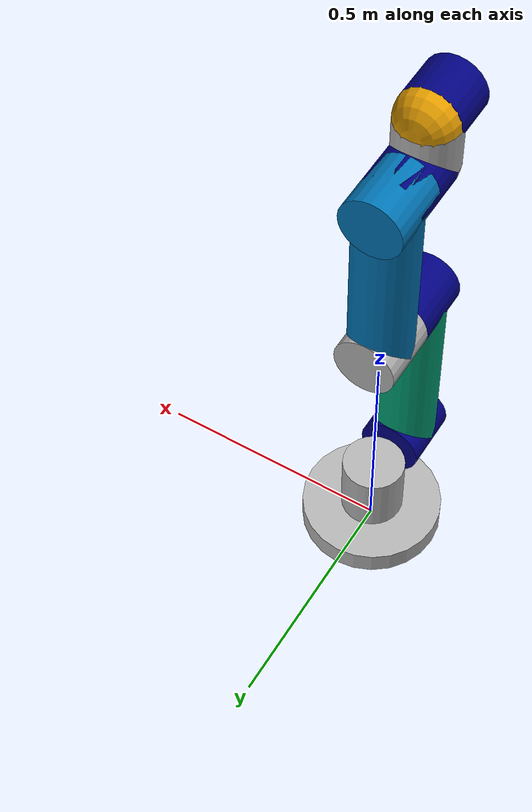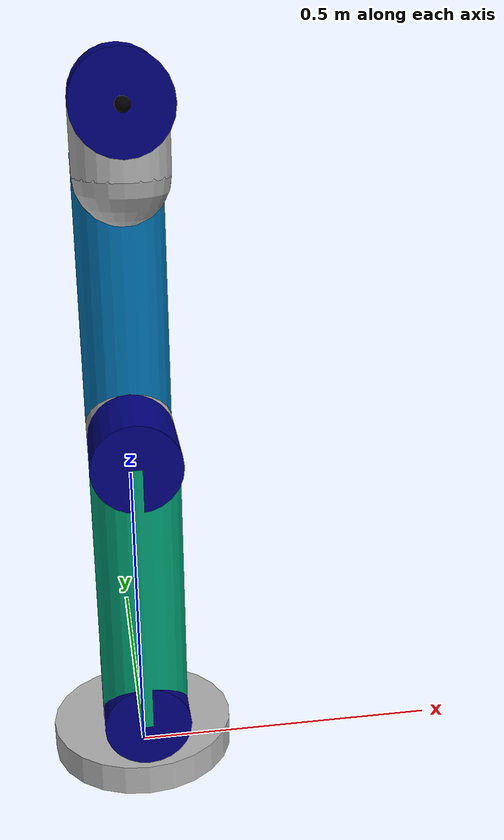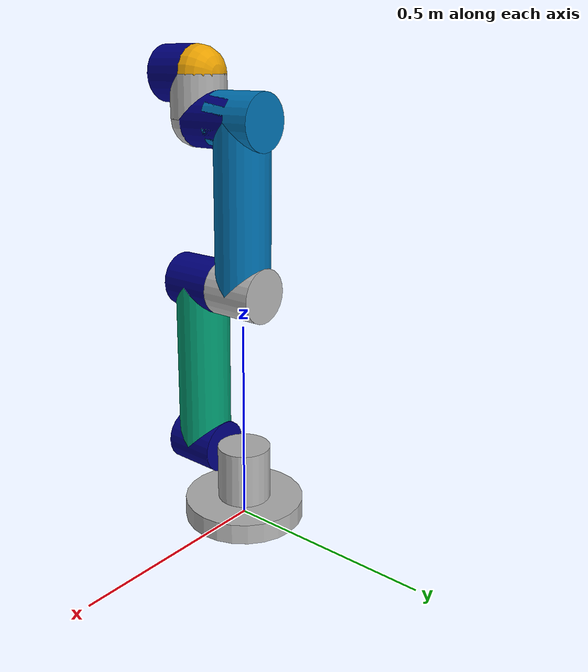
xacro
<?xml version="1.0"?>

<robot name="my_robot" xmlns:xacro="http://www.ros.org/wiki/xacro">

    <!--Gazebo Plugin-->
    <gazebo>
    <plugin filename="libgz_ros2_control-system.so" name="gz_ros2_control::GazeboSimROS2ControlPlugin">
        <parameters>$(find my_robot_desc)/config/controllers.yaml</parameters>
    </plugin>
    </gazebo>
    <!-- Include materials -->
    <xacro:include filename="materials.xacro"/>
    <xacro:include filename="inertias.xacro"/>

    <!-- constants -->
    <xacro:property name="d0" value="0.1625"/>
    <xacro:property name="a1" value="-0.425"/>
    <xacro:property name="a2" value="-0.3922"/>
    <xacro:property name="d3" value="0.1333"/>
    <xacro:property name="d4" value="0.0997"/>
    <xacro:property name="d5" value="0.0996"/>
    <xacro:property name="diameter" value="0.132"/>

    <!-- Positive geometry lengths -->
    <xacro:property name="a1_len" value="0.425"/>
    <xacro:property name="a2_len" value="0.3922"/>

    <!-- Robot Masses -->
    <xacro:property name="shoulder_mass" value="3.761"/>
    <xacro:property name="upper_arm_mass" value="8.058"/>
    <xacro:property name="forearm_mass" value="2.846"/>
    <xacro:property name="wrist_1_mass" value="1.37"/>
    <xacro:property name="wrist_2_mass" value="1.3"/>
    <xacro:property name="wrist_3_mass" value="0.365"/>

    <!-- Inertias -->
    <!-- Shoulder -->
    <xacro:property name="shoulder_com_x" value="0.0"/>
    <xacro:property name="shoulder_com_y" value="-0.00193"/>
    <xacro:property name="shoulder_com_z" value="-0.02561"/>
    <xacro:property name="shoulder_roll"  value="${pi/2}"/>
    <xacro:property name="shoulder_pitch" value="0"/>
    <xacro:property name="shoulder_yaw"   value="0"/>
    <xacro:property name="shoulder_ixx" value="0.00700210"/>
    <xacro:property name="shoulder_ixy" value="0.00000073"/>
    <xacro:property name="shoulder_ixz" value="-0.00001053"/>
    <xacro:property name="shoulder_iyy" value="0.00648091"/>
    <xacro:property name="shoulder_iyz" value="0.00049994"/>
    <xacro:property name="shoulder_izz" value="0.00657286"/>

    <!-- Upper arm -->
    <xacro:property name="upper_arm_com_x" value="-0.2125"/>
    <xacro:property name="upper_arm_com_y" value="0.0"/>
    <xacro:property name="upper_arm_com_z" value="0.11336"/>
    <xacro:property name="upper_arm_roll"  value="0"/>
    <xacro:property name="upper_arm_pitch" value="0"/>
    <xacro:property name="upper_arm_yaw"   value="0"/>
    <xacro:property name="upper_arm_ixx" value="0.01505885"/>
    <xacro:property name="upper_arm_ixy" value="-0.00005400"/>
    <xacro:property name="upper_arm_ixz" value="0.00000563"/>
    <xacro:property name="upper_arm_iyy" value="0.33388086"/>
    <xacro:property name="upper_arm_iyz" value="-0.00000181"/>
    <xacro:property name="upper_arm_izz" value="0.33247207"/>

    <!-- Forearm -->
    <xacro:property name="forearm_com_x" value="-0.2422"/>
    <xacro:property name="forearm_com_y" value="0.0"/>
    <xacro:property name="forearm_com_z" value="0.0265"/>
    <xacro:property name="forearm_roll"  value="0"/>
    <xacro:property name="forearm_pitch" value="0"/>
    <xacro:property name="forearm_yaw"   value="0"/>
    <xacro:property name="forearm_ixx" value="0.00399632"/>
    <xacro:property name="forearm_ixy" value="-0.00001365"/>
    <xacro:property name="forearm_ixz" value="0.00137272"/>
    <xacro:property name="forearm_iyy" value="0.07879254"/>
    <xacro:property name="forearm_iyz" value="-0.00000660"/>
    <xacro:property name="forearm_izz" value="0.07848510"/>

    <!-- Wrist 1 -->
    <xacro:property name="wrist_1_com_x" value="0.0"/>
    <xacro:property name="wrist_1_com_y" value="-0.01634"/>
    <xacro:property name="wrist_1_com_z" value="-0.0018"/>
    <xacro:property name="wrist_1_roll"  value="${pi/2}"/>
    <xacro:property name="wrist_1_pitch" value="0"/>
    <xacro:property name="wrist_1_yaw"   value="0"/>
    <xacro:property name="wrist_1_ixx" value="0.00165491"/>
    <xacro:property name="wrist_1_ixy" value="-0.00000282"/>
    <xacro:property name="wrist_1_ixz" value="-0.00000438"/>
    <xacro:property name="wrist_1_iyy" value="0.00135962"/>
    <xacro:property name="wrist_1_iyz" value="0.00010157"/>
    <xacro:property name="wrist_1_izz" value="0.00126279"/>

    <!-- Wrist 2 -->
    <xacro:property name="wrist_2_com_x" value="0.0"/>
    <xacro:property name="wrist_2_com_y" value="0.01634"/>
    <xacro:property name="wrist_2_com_z" value="-0.0018"/>
    <xacro:property name="wrist_2_roll"  value="${-pi/2}"/>
    <xacro:property name="wrist_2_pitch" value="0"/>
    <xacro:property name="wrist_2_yaw"   value="0"/>
    <xacro:property name="wrist_2_ixx" value="0.00135617"/>
    <xacro:property name="wrist_2_ixy" value="-0.00000274"/>
    <xacro:property name="wrist_2_ixz" value="0.00000444"/>
    <xacro:property name="wrist_2_iyy" value="0.00127827"/>
    <xacro:property name="wrist_2_iyz" value="-0.00005048"/>
    <xacro:property name="wrist_2_izz" value="0.00096614"/>

    <!-- Wrist 3 -->
    <xacro:property name="wrist_3_com_x" value="0.0"/>
    <xacro:property name="wrist_3_com_y" value="0.0"/>
    <xacro:property name="wrist_3_com_z" value="-0.001159"/>
    <xacro:property name="wrist_3_roll"  value="0"/>
    <xacro:property name="wrist_3_pitch" value="0"/>
    <xacro:property name="wrist_3_yaw"   value="0"/>
    <xacro:property name="wrist_3_ixx" value="0.00018694"/>
    <xacro:property name="wrist_3_ixy" value="0.00000006"/>
    <xacro:property name="wrist_3_ixz" value="-0.00000017"/>
    <xacro:property name="wrist_3_iyy" value="0.00018908"/>
    <xacro:property name="wrist_3_iyz" value="-0.00000092"/>
    <xacro:property name="wrist_3_izz" value="0.00025756"/>

    <!-- Links -->

    <link name="base_link">
        <visual>
            <origin xyz="0 0 0.025" rpy="0 0 0"/>
            <geometry>
                <cylinder radius="0.149" length="0.05"/>
            </geometry>
            <material name="gray"/>
        </visual>
        <collision>
            <origin xyz="0 0 0.025" rpy="0 0 0"/>
            <geometry>
                <cylinder radius="0.149" length="0.05"/>
            </geometry>
        </collision>
        <inertial>
            <origin xyz="0 0 0.025" rpy="0 0 0"/>
            <mass value="4.0"/>
            <inertia ixx="0.02303433" ixy="0.0" ixz="0.0"
                     iyy="0.02303433" iyz="0.0" izz="0.044402"/>
        </inertial>
    </link>

    <link name="link_0">
        <visual>
            <origin xyz="0 0 ${d0/2 + 0.025}" rpy="0 0 0"/>
            <geometry>
                <cylinder radius="${diameter/2}" length="${d0}"/>
            </geometry>
            <material name="gray"/>
        </visual>
        <collision>
            <origin xyz="0 0 ${d0/2 + 0.025}" rpy="0 0 0"/>
            <geometry>
                <cylinder radius="${diameter/2}" length="${d0}"/>
            </geometry>
        </collision>
        <xacro:robot_inertial
            mass="${shoulder_mass}"
            com_x="${shoulder_com_x}"
            com_y="${shoulder_com_y}"
            com_z="${shoulder_com_z}"
            roll="${shoulder_roll}"
            pitch="${shoulder_pitch}"
            yaw="${shoulder_yaw}"
            ixx="${shoulder_ixx}"
            ixy="${shoulder_ixy}"
            ixz="${shoulder_ixz}"
            iyy="${shoulder_iyy}"
            iyz="${shoulder_iyz}"
            izz="${shoulder_izz}"/>
    </link>

    <link name="link_1">
        <visual>
            <origin xyz="0 0 ${diameter}" rpy="0 0 0"/>
            <geometry>
                <cylinder radius="${diameter/2}" length="${diameter}"/>
            </geometry>
            <material name="blue"/>
        </visual>
        <visual>
            <origin xyz="0 ${-a1/2} 0.133" rpy="${pi/2} 0 0"/>
            <geometry>
                <cylinder radius="${diameter/2}" length="${a1_len}"/>
            </geometry>
        </visual>
        <visual>
            <origin xyz="0 ${-a1} ${diameter}" rpy="0 0 0"/>
            <geometry>
                <cylinder radius="${diameter/2}" length="${diameter}"/>
            </geometry>
            <material name="blue"/>
        </visual>

        <collision>
            <origin xyz="0 0 ${diameter}" rpy="0 0 0"/>
            <geometry>
                <cylinder radius="${diameter/2}" length="${diameter}"/>
            </geometry>
        </collision>
        <collision>
            <origin xyz="0 ${-a1/2} 0.133" rpy="${pi/2} 0 0"/>
            <geometry>
                <cylinder radius="${diameter/2}" length="${a1_len}"/>
            </geometry>
        </collision>
        <collision>
            <origin xyz="0 ${-a1} ${diameter}" rpy="0 0 0"/>
            <geometry>
                <cylinder radius="${diameter/2}" length="${diameter}"/>
            </geometry>
        </collision>

        <xacro:robot_inertial
            mass="${upper_arm_mass}"
            com_x="${upper_arm_com_x}"
            com_y="${upper_arm_com_y}"
            com_z="${upper_arm_com_z}"
            roll="${upper_arm_roll}"
            pitch="${upper_arm_pitch}"
            yaw="${upper_arm_yaw}"
            ixx="${upper_arm_ixx}"
            ixy="${upper_arm_ixy}"
            ixz="${upper_arm_ixz}"
            iyy="${upper_arm_iyy}"
            iyz="${upper_arm_iyz}"
            izz="${upper_arm_izz}"/>
    </link>

    <link name="link_1_j2_rot">
        <inertial>
            <origin xyz="0 0 0" rpy="0 0 0"/>
            <mass value="0.001"/>
            <inertia ixx="1e-6" ixy="0" ixz="0" iyy="1e-6" iyz="0" izz="1e-6"/>
        </inertial>
    </link>

    <link name="link_2">
        <visual>
            <origin xyz="0 0 0" rpy="0 0 0"/>
            <geometry>
                <cylinder radius="${diameter/2}" length="${diameter}"/>
            </geometry>
            <material name="gray"/>
        </visual>
        <visual>
            <origin xyz="${a2/2} 0 0" rpy="0 ${pi/2} 0"/>
            <geometry>
                <cylinder radius="${diameter/2}" length="${a2_len}"/>
            </geometry>
        </visual>
        <visual>
            <origin xyz="${a2} 0 0" rpy="0 0 0"/>
            <geometry>
                <cylinder radius="${diameter/2}" length="${diameter}"/>
            </geometry>
        </visual>

        <collision>
            <origin xyz="0 0 0" rpy="0 0 0"/>
            <geometry>
                <cylinder radius="${diameter/2}" length="${diameter}"/>
            </geometry>
        </collision>
        <collision>
            <origin xyz="${a2/2} 0 0" rpy="0 ${pi/2} 0"/>
            <geometry>
                <cylinder radius="${diameter/2}" length="${a2_len}"/>
            </geometry>
        </collision>
        <collision>
            <origin xyz="${a2} 0 0" rpy="0 0 0"/>
            <geometry>
                <cylinder radius="${diameter/2}" length="${diameter}"/>
            </geometry>
        </collision>

        <xacro:robot_inertial
            mass="${forearm_mass}"
            com_x="${forearm_com_x}"
            com_y="${forearm_com_y}"
            com_z="${forearm_com_z}"
            roll="${forearm_roll}"
            pitch="${forearm_pitch}"
            yaw="${forearm_yaw}"
            ixx="${forearm_ixx}"
            ixy="${forearm_ixy}"
            ixz="${forearm_ixz}"
            iyy="${forearm_iyy}"
            iyz="${forearm_iyz}"
            izz="${forearm_izz}"/>
    </link>

    <link name="link_3">
        <visual>
            <origin xyz="0 0 ${diameter/2}" rpy="0 0 0"/>
            <geometry>
                <cylinder radius="${diameter/2}" length="${diameter}"/>
            </geometry>
            <material name="blue"/>
        </visual>
        <collision>
            <origin xyz="0 0 ${diameter/2}" rpy="0 0 0"/>
            <geometry>
                <cylinder radius="${diameter/2}" length="${diameter}"/>
            </geometry>
        </collision>
        <xacro:robot_inertial
            mass="${wrist_1_mass}"
            com_x="${wrist_1_com_x}"
            com_y="${wrist_1_com_y}"
            com_z="${wrist_1_com_z}"
            roll="${wrist_1_roll}"
            pitch="${wrist_1_pitch}"
            yaw="${wrist_1_yaw}"
            ixx="${wrist_1_ixx}"
            ixy="${wrist_1_ixy}"
            ixz="${wrist_1_ixz}"
            iyy="${wrist_1_iyy}"
            iyz="${wrist_1_iyz}"
            izz="${wrist_1_izz}"/>
    </link>

    <link name="link_3_j4_rot">
        <inertial>
            <origin xyz="0 0 0" rpy="0 0 0"/>
            <mass value="0.001"/>
            <inertia ixx="1e-6" ixy="0" ixz="0" iyy="1e-6" iyz="0" izz="1e-6"/>
        </inertial>
    </link>

    <link name="link_4">
        <visual>
            <origin xyz="0 0 ${d4/2}" rpy="0 0 0"/>
            <geometry>
                <cylinder radius="${diameter/2}" length="${d4}"/>
            </geometry>
            <material name="gray"/>
        </visual>
        <visual>
            <origin xyz="0 0 0" rpy="0 0 0"/>
            <geometry>
                <sphere radius="${diameter/2}"/>
            </geometry>
        </visual>

        <collision>
            <origin xyz="0 0 ${d4/2}" rpy="0 0 0"/>
            <geometry>
                <cylinder radius="${diameter/2}" length="${d4}"/>
            </geometry>
        </collision>
        <collision>
            <origin xyz="0 0 0" rpy="0 0 0"/>
            <geometry>
                <sphere radius="${diameter/2}"/>
            </geometry>
        </collision>

        <xacro:robot_inertial
            mass="${wrist_2_mass}"
            com_x="${wrist_2_com_x}"
            com_y="${wrist_2_com_y}"
            com_z="${wrist_2_com_z}"
            roll="${wrist_2_roll}"
            pitch="${wrist_2_pitch}"
            yaw="${wrist_2_yaw}"
            ixx="${wrist_2_ixx}"
            ixy="${wrist_2_ixy}"
            ixz="${wrist_2_ixz}"
            iyy="${wrist_2_iyy}"
            iyz="${wrist_2_iyz}"
            izz="${wrist_2_izz}"/>
    </link>

    <link name="link_5">
        <visual>
            <origin xyz="0 0 ${d5/2}" rpy="0 0 0"/>
            <geometry>
                <cylinder radius="${diameter/2}" length="${d5}"/>
            </geometry>
            <material name="blue"/>
        </visual>
        <visual>
            <origin xyz="0 0 0" rpy="0 0 0"/>
            <geometry>
                <sphere radius="${diameter/2}"/>
            </geometry>
        </visual>

        <collision>
            <origin xyz="0 0 ${d5/2}" rpy="0 0 0"/>
            <geometry>
                <cylinder radius="${diameter/2}" length="${d5}"/>
            </geometry>
        </collision>
        <collision>
            <origin xyz="0 0 0" rpy="0 0 0"/>
            <geometry>
                <sphere radius="${diameter/2}"/>
            </geometry>
        </collision>

        <xacro:robot_inertial
            mass="${wrist_3_mass}"
            com_x="${wrist_3_com_x}"
            com_y="${wrist_3_com_y}"
            com_z="${wrist_3_com_z}"
            roll="${wrist_3_roll}"
            pitch="${wrist_3_pitch}"
            yaw="${wrist_3_yaw}"
            ixx="${wrist_3_ixx}"
            ixy="${wrist_3_ixy}"
            ixz="${wrist_3_ixz}"
            iyy="${wrist_3_iyy}"
            iyz="${wrist_3_iyz}"
            izz="${wrist_3_izz}"/>
    </link>

    <link name="ee_link">
        <visual>
            <origin xyz="0 0 0.005" rpy="0 0 0"/>
            <geometry>
                <sphere radius="0.01"/>
            </geometry>
            <material name="black"/>
        </visual>
        <collision>
            <origin xyz="0 0 0.005" rpy="0 0 0"/>
            <geometry>
                <sphere radius="0.01"/>
            </geometry>
        </collision>
        <inertial>
            <origin xyz="0 0 0.005" rpy="0 0 0"/>
            <mass value="0.001"/>
            <inertia ixx="1e-6" ixy="0" ixz="0" iyy="1e-6" iyz="0" izz="1e-6"/>
        </inertial>
    </link>

    <!-- Joints -->

    <joint name="base_link_link_0_joint" type="revolute">
        <parent link="base_link"/>
        <child link="link_0"/>
        <origin xyz="0 0 0" rpy="0 0 0"/>
        <axis xyz="0 0 1"/>
        <limit lower="${-2*pi}" upper="${2*pi}" effort="150" velocity="1.5"/>
    </joint>

    <joint name="link_0_link_1_joint" type="revolute">
        <parent link="link_0"/>
        <child link="link_1"/>
        <origin xyz="0 0 ${d0}" rpy="${pi/2} 0 0"/>
        <axis xyz="0 0 1"/>
        <limit lower="${-2*pi}" upper="${2*pi}" effort="150" velocity="1.5"/>
    </joint>

    <joint name="link_1_link_1_j2_rot_joint" type="fixed">
        <parent link="link_1"/>
        <child link="link_1_j2_rot"/>
        <origin xyz="0 0 0" rpy="0 0 ${-pi/2}"/>
    </joint>

    <joint name="link_1_link_2_joint" type="revolute">
        <parent link="link_1_j2_rot"/>
        <child link="link_2"/>
        <origin xyz="${a1} 0 0" rpy="0 0 0"/>
        <axis xyz="0 0 1"/>
        <limit lower="${-2*pi}" upper="${2*pi}" effort="150" velocity="1.5"/>
    </joint>

    <joint name="link_2_link_3_joint" type="revolute">
        <parent link="link_2"/>
        <child link="link_3"/>
        <origin xyz="${a2} 0 0" rpy="0 0 0"/>
        <axis xyz="0 0 1"/>
        <limit lower="${-2*pi}" upper="${2*pi}" effort="150" velocity="1.5"/>
    </joint>

    <joint name="link_3_link_3_j4_rot_joint" type="fixed">
        <parent link="link_3"/>
        <child link="link_3_j4_rot"/>
        <origin xyz="0 0 0" rpy="0 0 ${-pi/2}"/>
    </joint>

    <joint name="link_3_link_4_joint" type="revolute">
        <parent link="link_3_j4_rot"/>
        <child link="link_4"/>
        <origin xyz="0 0 ${d3}" rpy="${pi/2} 0 0"/>
        <axis xyz="0 0 1"/>
        <limit lower="${-2*pi}" upper="${2*pi}" effort="150" velocity="1.5"/>
    </joint>

    <joint name="link_4_link_5_joint" type="revolute">
        <parent link="link_4"/>
        <child link="link_5"/>
        <origin xyz="0 0 ${d4}" rpy="${-pi/2} 0 0"/>
        <axis xyz="0 0 1"/>
        <limit lower="${-2*pi}" upper="${2*pi}" effort="150" velocity="1.5"/>
    </joint>

    <joint name="link_5_ee_link_joint" type="fixed">
        <parent link="link_5"/>
        <child link="ee_link"/>
        <origin xyz="0 0 ${d5}" rpy="0 0 0"/>
    </joint>

    <ros2_control name="GazeboSimSystem" type="system">
    <hardware>
        <plugin>gz_ros2_control/GazeboSimSystem</plugin>
    </hardware>

    <joint name="base_link_link_0_joint">
        <command_interface name="position"/>
        <state_interface name="position"/>
        <state_interface name="velocity"/>
        <state_interface name="effort"/>
    </joint>

    <joint name="link_0_link_1_joint">
        <command_interface name="position"/>
        <state_interface name="position"/>
        <state_interface name="velocity"/>
        <state_interface name="effort"/>
    </joint>

    <joint name="link_1_link_2_joint">
        <command_interface name="position"/>
        <state_interface name="position"/>
        <state_interface name="velocity"/>
        <state_interface name="effort"/>
    </joint>

    <joint name="link_2_link_3_joint">
        <command_interface name="position"/>
        <state_interface name="position"/>
        <state_interface name="velocity"/>
        <state_interface name="effort"/>
    </joint>

    <joint name="link_3_link_4_joint">
        <command_interface name="position"/>
        <state_interface name="position"/>
        <state_interface name="velocity"/>
        <state_interface name="effort"/>
    </joint>

    <joint name="link_4_link_5_joint">
        <command_interface name="position"/>
        <state_interface name="position"/>
        <state_interface name="velocity"/>
        <state_interface name="effort"/>
    </joint>
    </ros2_control>

</robot>

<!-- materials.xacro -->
<robot xmlns:xacro="http://www.ros.org/wiki/xacro">

  <!-- Material definitions -->
  <material name="blue">
    <color rgba="0 0 0.5 1"/>
  </material>

  <material name="gray">
    <color rgba="0.7 0.7 0.7 1"/>
  </material>

  <material name="red">
    <color rgba="0.5 0 0 1"/>
  </material>

  <material name="green">
    <color rgba="0 0.5 0 1"/>
  </material>

  <material name="yellow">
    <color rgba="0.5 0.5 0 1"/>
  </material>

  <material name="cyan">
    <color rgba="0 0.5 0.5 1"/>
  </material>

  <material name="dark_gray">
    <color rgba="0.3 0.3 0.3 1"/>
  </material>

  <material name="black">
    <color rgba="0 0 0 1"/>
  </material>

</robot>

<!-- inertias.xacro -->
<robot xmlns:xacro="http://www.ros.org/wiki/xacro">

  <!-- Reusable inertial block -->
  <xacro:macro name="robot_inertial" params="
      mass
      com_x com_y com_z
      roll pitch yaw
      ixx ixy ixz iyy iyz izz">

    <inertial>
      <origin xyz="${com_x} ${com_y} ${com_z}"
              rpy="${roll} ${pitch} ${yaw}"/>
      <mass value="${mass}"/>
      <inertia ixx="${ixx}" ixy="${ixy}" ixz="${ixz}"
               iyy="${iyy}" iyz="${iyz}" izz="${izz}"/>
    </inertial>
  </xacro:macro>

</robot>
